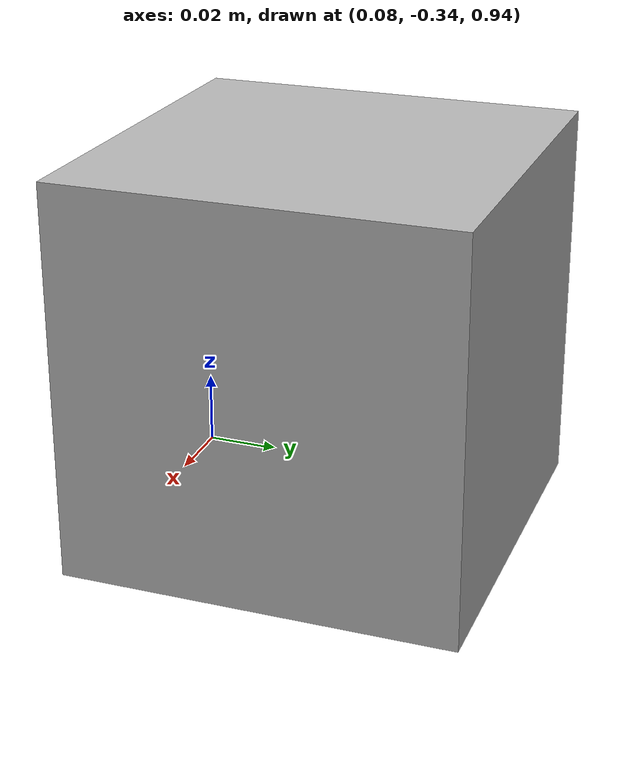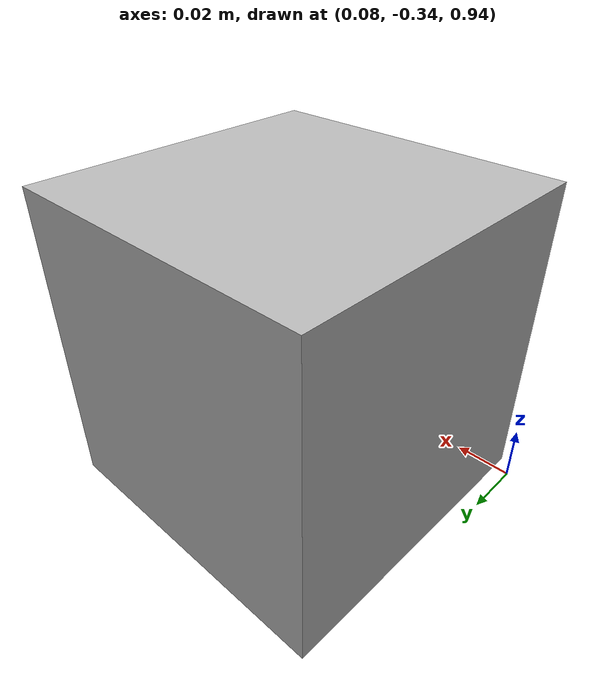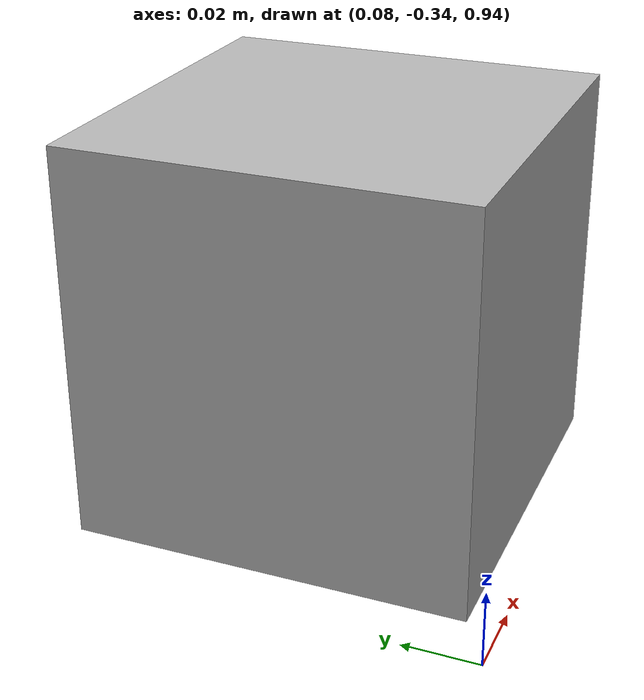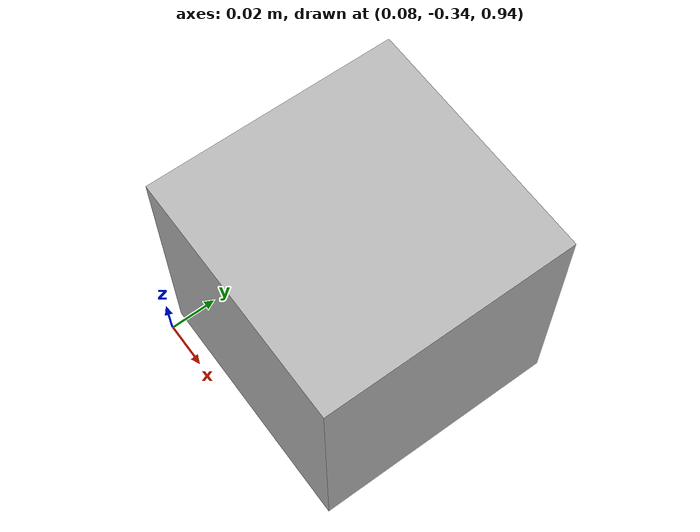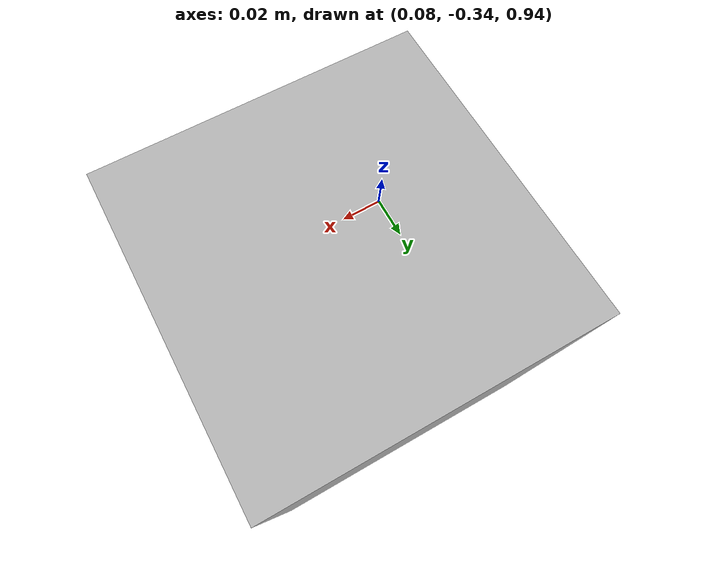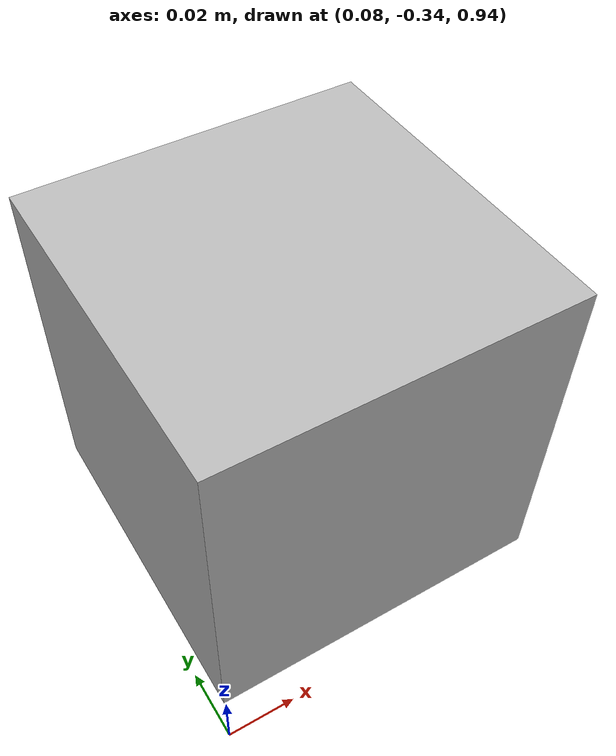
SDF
<?xml version="1.0" ?>
<sdf version="1.4">
  <world name="default">

    <!-- ground plane for an empty world -->
    <include>
      <uri>model://ground_plane</uri>
    </include>

    <!-- box as a test object for in hand pose estimation -->
    <model name="box">
      <static>true</static>
      <pose> 0.131313 -0.285373 1.0 0 0 0</pose>
      <link name="body">
        <collision name="collision1">
          <geometry>
            <box>
              <size>0.1 0.1 0.1</size>
            </box>
          </geometry>
        </collision>
        <visual name="visual1">
          <geometry>
            <box>
              <size>0.1
                0.1 0.1</size>
            </box>
          </geometry>
        </visual>
      </link>
    </model>

    <light type="directional" name="light">
      <pose frame=''>0
        -4 2.5 1.0 0 0</pose>
      <diffuse>1.0 1.0 1.0 1</diffuse>
      <specular>0.2 0.2 0.2 1</specular>
      <attenuation>
        <range>20</range>
        <constant>0.9</constant>
        <linear>
          0.01</linear>
        <quadratic>0.001</quadratic>
      </attenuation>
      <direction>0 0 -1</direction>
      <cast_shadows>1</cast_shadows>
    </light>

    <physics type="ode">
      <!-- disable gravity -->
      <gravity>0.000000
        0.000000 0.00001</gravity>
      <ode>
        <solver>
          <type>quick</type>
          <iters>100</iters>
          <precon_iters>0</precon_iters>
          <sor>1.000000</sor>
        </solver>
        <constraints>
          <cfm>
            0.000000</cfm>
          <erp>0.200000</erp>
          <contact_max_correcting_vel>0.000000</contact_max_correcting_vel>
          <contact_surface_layer>0.00000</contact_surface_layer>
        </constraints>
      </ode>
      <real_time_factor>
        1.0</real_time_factor>
      <max_step_size>0.001000</max_step_size>
    </physics>

    <gui fullscreen='0'>
      <camera name='user_camera'>
        <pose frame=''>0.076734 -1.02633 0.391602 -0
          0.219642 1.62419</pose>
        <view_controller>orbit</view_controller>
        <projection_type>perspective</projection_type>
      </camera>
    </gui>

  </world>
</sdf>
